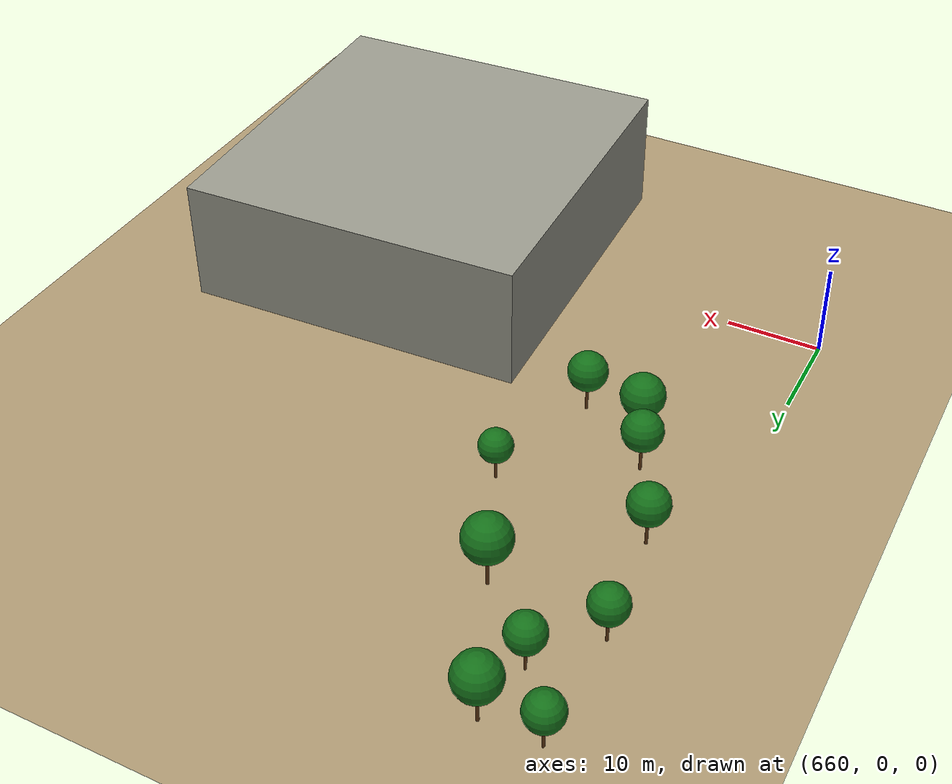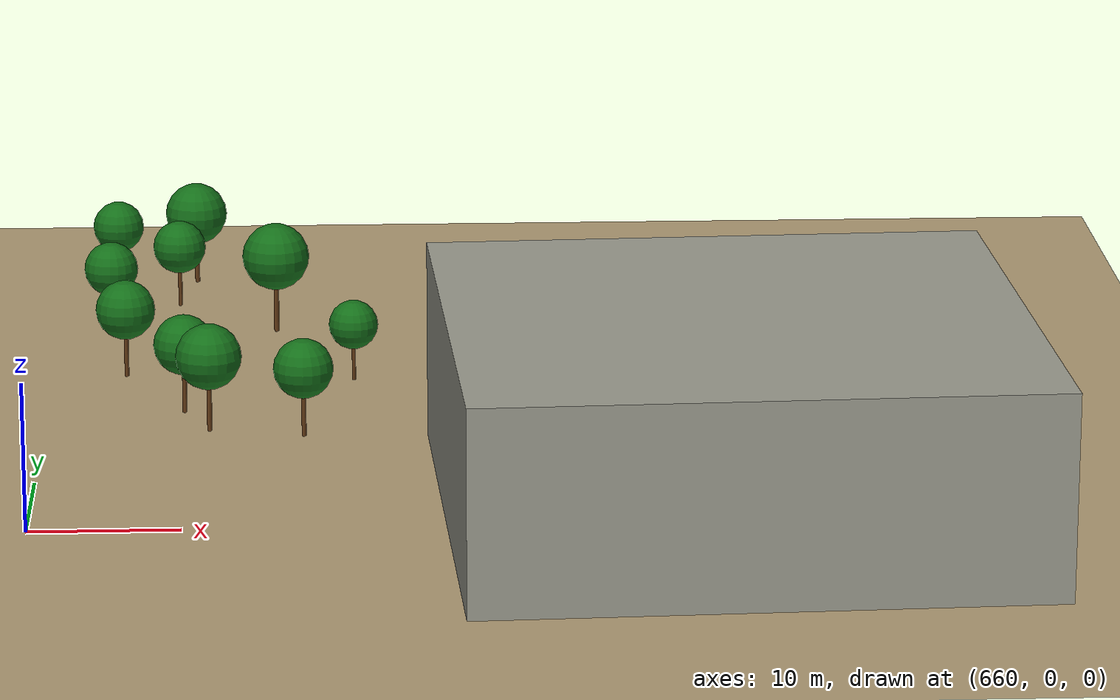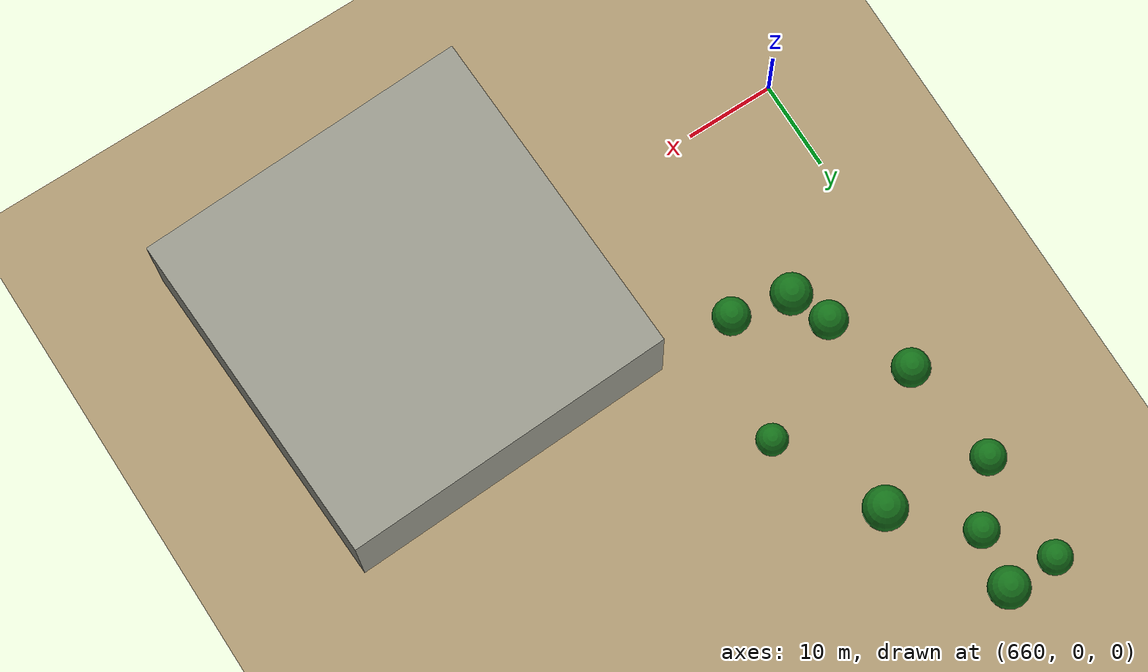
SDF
<sdf version="1.9">
 <world name="crossroad_world">
  <model name="ground_plane">
   <static>true</static>
   <pose>0 0 -0.05 0 0 0</pose>
   <link name="link">
    <collision name="collision">
     <geometry><plane><normal>0 0 1</normal><size>10000 10000</size></plane></geometry>
    </collision>
    <visual name="visual">
     <geometry><plane><normal>0 0 1</normal><size>15000 15000</size></plane></geometry>
     <material><ambient>0.68 0.60 0.45 1</ambient><diffuse>0.68 0.60 0.45 1</diffuse></material>
    </visual>
   </link>
  </model>
  <model name="tree_134">
   <static>true</static>
   <pose>669.687 58.827 0 0 0 0</pose>
   <link name="link">
    <visual name="trunk">
     <pose>0 0 1.926 0 0 0</pose>
     <geometry><cylinder><radius>0.169</radius><length>3.852</length></cylinder></geometry>
     <material><ambient>0.38 0.22 0.08 1</ambient><diffuse>0.38 0.22 0.08 1</diffuse></material>
    </visual>
    <visual name="canopy">
     <pose>0 0 5.339 0 0 0</pose>
     <geometry><sphere><radius>2.287</radius></sphere></geometry>
     <material><ambient>0.08 0.44 0.10 1</ambient><diffuse>0.08 0.44 0.10 1</diffuse></material>
    </visual>
    <collision name="col">
     <pose>0 0 1.926 0 0 0</pose>
     <geometry><cylinder><radius>0.169</radius><length>3.852</length></cylinder></geometry>
    </collision>
   </link>
  </model>
  <model name="tree_137">
   <static>true</static>
   <pose>665.229 34.351 0 0 0 0</pose>
   <link name="link">
    <visual name="trunk">
     <pose>0 0 1.764 0 0 0</pose>
     <geometry><cylinder><radius>0.154</radius><length>3.529</length></cylinder></geometry>
     <material><ambient>0.38 0.22 0.08 1</ambient><diffuse>0.38 0.22 0.08 1</diffuse></material>
    </visual>
    <visual name="canopy">
     <pose>0 0 4.891 0 0 0</pose>
     <geometry><sphere><radius>2.095</radius></sphere></geometry>
     <material><ambient>0.08 0.44 0.10 1</ambient><diffuse>0.08 0.44 0.10 1</diffuse></material>
    </visual>
    <collision name="col">
     <pose>0 0 1.764 0 0 0</pose>
     <geometry><cylinder><radius>0.154</radius><length>3.529</length></cylinder></geometry>
    </collision>
   </link>
  </model>
  <model name="tree_142">
   <static>true</static>
   <pose>669.574 25.522 0 0 0 0</pose>
   <link name="link">
    <visual name="trunk">
     <pose>0 0 1.762 0 0 0</pose>
     <geometry><cylinder><radius>0.154</radius><length>3.525</length></cylinder></geometry>
     <material><ambient>0.38 0.22 0.08 1</ambient><diffuse>0.38 0.22 0.08 1</diffuse></material>
    </visual>
    <visual name="canopy">
     <pose>0 0 4.885 0 0 0</pose>
     <geometry><sphere><radius>2.093</radius></sphere></geometry>
     <material><ambient>0.08 0.44 0.10 1</ambient><diffuse>0.08 0.44 0.10 1</diffuse></material>
    </visual>
    <collision name="col">
     <pose>0 0 1.762 0 0 0</pose>
     <geometry><cylinder><radius>0.154</radius><length>3.525</length></cylinder></geometry>
    </collision>
   </link>
  </model>
  <model name="tree_143">
   <static>true</static>
   <pose>663.743 46.436 0 0 0 0</pose>
   <link name="link">
    <visual name="trunk">
     <pose>0 0 1.638 0 0 0</pose>
     <geometry><cylinder><radius>0.143</radius><length>3.277</length></cylinder></geometry>
     <material><ambient>0.38 0.22 0.08 1</ambient><diffuse>0.38 0.22 0.08 1</diffuse></material>
    </visual>
    <visual name="canopy">
     <pose>0 0 4.541 0 0 0</pose>
     <geometry><sphere><radius>1.945</radius></sphere></geometry>
     <material><ambient>0.08 0.44 0.10 1</ambient><diffuse>0.08 0.44 0.10 1</diffuse></material>
    </visual>
    <collision name="col">
     <pose>0 0 1.638 0 0 0</pose>
     <geometry><cylinder><radius>0.143</radius><length>3.277</length></cylinder></geometry>
    </collision>
   </link>
  </model>
  <model name="tree_146">
   <static>true</static>
   <pose>675.796 45.276 0 0 0 0</pose>
   <link name="link">
    <visual name="trunk">
     <pose>0 0 2.042 0 0 0</pose>
     <geometry><cylinder><radius>0.179</radius><length>4.084</length></cylinder></geometry>
     <material><ambient>0.38 0.22 0.08 1</ambient><diffuse>0.38 0.22 0.08 1</diffuse></material>
    </visual>
    <visual name="canopy">
     <pose>0 0 5.660 0 0 0</pose>
     <geometry><sphere><radius>2.425</radius></sphere></geometry>
     <material><ambient>0.08 0.44 0.10 1</ambient><diffuse>0.08 0.44 0.10 1</diffuse></material>
    </visual>
    <collision name="col">
     <pose>0 0 2.042 0 0 0</pose>
     <geometry><cylinder><radius>0.179</radius><length>4.084</length></cylinder></geometry>
    </collision>
   </link>
  </model>
  <model name="tree_148">
   <static>true</static>
   <pose>671.378 21.197 0 0 0 0</pose>
   <link name="link">
    <visual name="trunk">
     <pose>0 0 1.908 0 0 0</pose>
     <geometry><cylinder><radius>0.167</radius><length>3.816</length></cylinder></geometry>
     <material><ambient>0.38 0.22 0.08 1</ambient><diffuse>0.38 0.22 0.08 1</diffuse></material>
    </visual>
    <visual name="canopy">
     <pose>0 0 5.289 0 0 0</pose>
     <geometry><sphere><radius>2.266</radius></sphere></geometry>
     <material><ambient>0.08 0.44 0.10 1</ambient><diffuse>0.08 0.44 0.10 1</diffuse></material>
    </visual>
    <collision name="col">
     <pose>0 0 1.908 0 0 0</pose>
     <geometry><cylinder><radius>0.167</radius><length>3.816</length></cylinder></geometry>
    </collision>
   </link>
  </model>
  <model name="tree_150">
   <static>true</static>
   <pose>681.355 32.840 0 0 0 0</pose>
   <link name="link">
    <visual name="trunk">
     <pose>0 0 1.462 0 0 0</pose>
     <geometry><cylinder><radius>0.128</radius><length>2.923</length></cylinder></geometry>
     <material><ambient>0.38 0.22 0.08 1</ambient><diffuse>0.38 0.22 0.08 1</diffuse></material>
    </visual>
    <visual name="canopy">
     <pose>0 0 4.052 0 0 0</pose>
     <geometry><sphere><radius>1.736</radius></sphere></geometry>
     <material><ambient>0.08 0.44 0.10 1</ambient><diffuse>0.08 0.44 0.10 1</diffuse></material>
    </visual>
    <collision name="col">
     <pose>0 0 1.462 0 0 0</pose>
     <geometry><cylinder><radius>0.128</radius><length>2.923</length></cylinder></geometry>
    </collision>
   </link>
  </model>
  <model name="tree_153">
   <static>true</static>
   <pose>663.810 58.739 0 0 0 0</pose>
   <link name="link">
    <visual name="trunk">
     <pose>0 0 1.587 0 0 0</pose>
     <geometry><cylinder><radius>0.139</radius><length>3.174</length></cylinder></geometry>
     <material><ambient>0.38 0.22 0.08 1</ambient><diffuse>0.38 0.22 0.08 1</diffuse></material>
    </visual>
    <visual name="canopy">
     <pose>0 0 4.399 0 0 0</pose>
     <geometry><sphere><radius>1.884</radius></sphere></geometry>
     <material><ambient>0.08 0.44 0.10 1</ambient><diffuse>0.08 0.44 0.10 1</diffuse></material>
    </visual>
    <collision name="col">
     <pose>0 0 1.587 0 0 0</pose>
     <geometry><cylinder><radius>0.139</radius><length>3.174</length></cylinder></geometry>
    </collision>
   </link>
  </model>
  <model name="tree_154">
   <static>true</static>
   <pose>668.570 52.366 0 0 0 0</pose>
   <link name="link">
    <visual name="trunk">
     <pose>0 0 1.626 0 0 0</pose>
     <geometry><cylinder><radius>0.142</radius><length>3.252</length></cylinder></geometry>
     <material><ambient>0.38 0.22 0.08 1</ambient><diffuse>0.38 0.22 0.08 1</diffuse></material>
    </visual>
    <visual name="canopy">
     <pose>0 0 4.507 0 0 0</pose>
     <geometry><sphere><radius>1.931</radius></sphere></geometry>
     <material><ambient>0.08 0.44 0.10 1</ambient><diffuse>0.08 0.44 0.10 1</diffuse></material>
    </visual>
    <collision name="col">
     <pose>0 0 1.626 0 0 0</pose>
     <geometry><cylinder><radius>0.142</radius><length>3.252</length></cylinder></geometry>
    </collision>
   </link>
  </model>
  <model name="tree_156">
   <static>true</static>
   <pose>677.848 19.748 0 0 0 0</pose>
   <link name="link">
    <visual name="trunk">
     <pose>0 0 1.734 0 0 0</pose>
     <geometry><cylinder><radius>0.152</radius><length>3.468</length></cylinder></geometry>
     <material><ambient>0.38 0.22 0.08 1</ambient><diffuse>0.38 0.22 0.08 1</diffuse></material>
    </visual>
    <visual name="canopy">
     <pose>0 0 4.806 0 0 0</pose>
     <geometry><sphere><radius>2.059</radius></sphere></geometry>
     <material><ambient>0.08 0.44 0.10 1</ambient><diffuse>0.08 0.44 0.10 1</diffuse></material>
    </visual>
    <collision name="col">
     <pose>0 0 1.734 0 0 0</pose>
     <geometry><cylinder><radius>0.152</radius><length>3.468</length></cylinder></geometry>
    </collision>
   </link>
  </model>
  <model name="building_706">
   <static>true</static>
   <pose>705.862 1.544 6.797 0 0 0.041</pose>
   <link name="link">
    <visual name="body">
     <geometry><box><size>37.61 37.94 13.59</size></box></geometry>
     <material><ambient>0.60 0.60 0.55 1</ambient><diffuse>0.60 0.60 0.55 1</diffuse></material>
    </visual>
    <collision name="col"><geometry><box><size>37.61 37.94 13.59</size></box></geometry></collision>
   </link>
  </model>
 </world>
</sdf>
